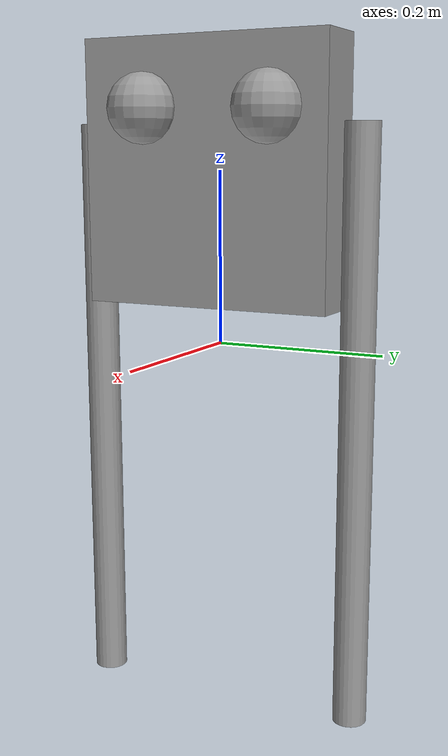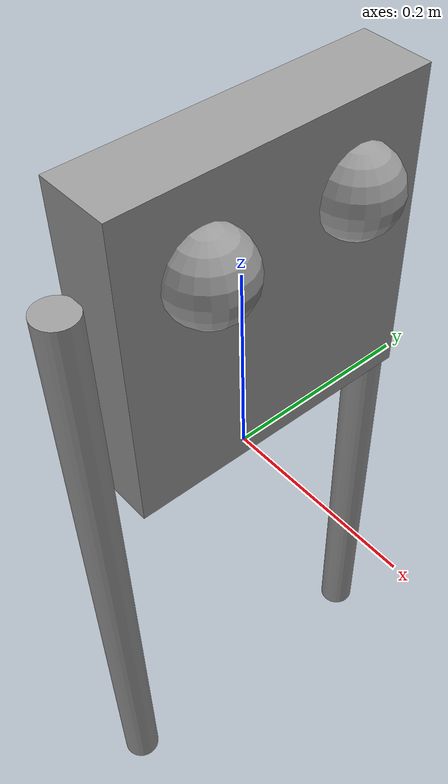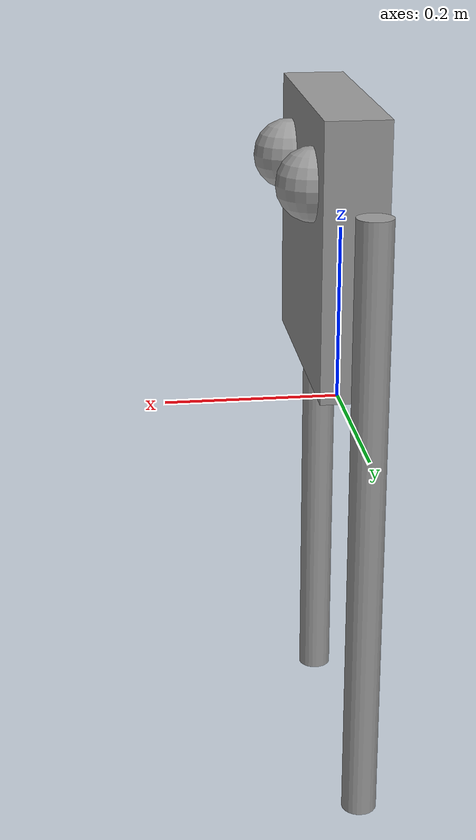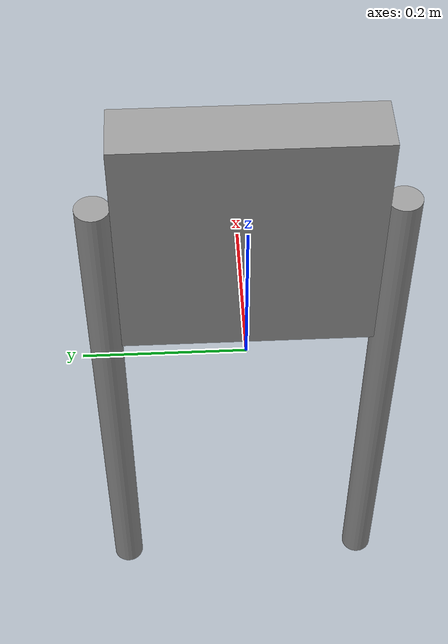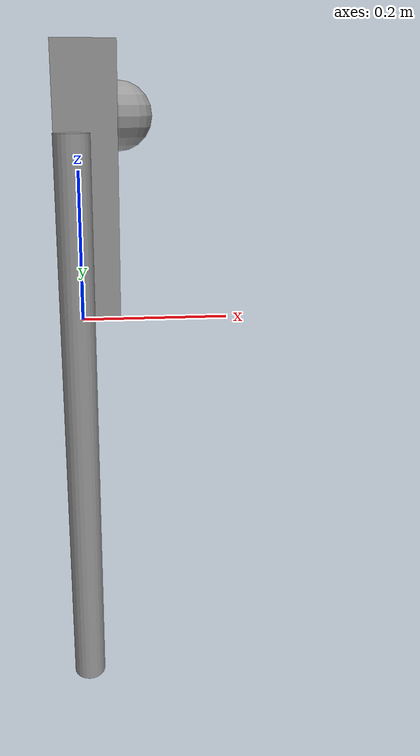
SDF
<?xml version='1.0'?>
<sdf version='1.7'>
  <model name='HumanoidRobot'>
    <link name='link_0'>
      <inertial>
        <mass>1</mass>
        <inertia>
          <ixx>0.145833</ixx>
          <ixy>0</ixy>
          <ixz>0</ixz>
          <iyy>0.145833</iyy>
          <iyz>0</iyz>
          <izz>0.125</izz>
        </inertia>
        <pose>0 0 0 0 -0 0</pose>
      </inertial>
      <pose>-0.005 -0.16914 -0.096951 0 -0 0</pose>
      <gravity>1</gravity>
      <self_collide>0</self_collide>
      <kinematic>0</kinematic>
      <enable_wind>0</enable_wind>
      <visual name='visual'>
        <pose>0 0 0 0 -0 0</pose>
        <geometry>
          <cylinder>
            <radius>0.02</radius>
            <length>0.7</length>
          </cylinder>
        </geometry>
        <material>
          <lighting>1</lighting>
          <script>
            <uri>file://media/materials/scripts/gazebo.material</uri>
            <name>Gazebo/Grey</name>
          </script>
          <shader type='pixel'>
            <normal_map>__default__</normal_map>
          </shader>
          <ambient>0.3 0.3 0.3 1</ambient>
          <diffuse>0.7 0.7 0.7 1</diffuse>
          <specular>0.01 0.01 0.01 1</specular>
          <emissive>0 0 0 1</emissive>
        </material>
        <transparency>0</transparency>
        <cast_shadows>1</cast_shadows>
      </visual>
      <collision name='collision'>
        <laser_retro>0</laser_retro>
        <max_contacts>10</max_contacts>
        <pose>0 0 0 0 -0 0</pose>
        <geometry>
          <cylinder>
            <radius>0.02</radius>
            <length>0.7</length>
          </cylinder>
        </geometry>
        <surface>
          <friction>
            <ode>
              <mu>1</mu>
              <mu2>1</mu2>
              <fdir1>0 0 0</fdir1>
              <slip1>0</slip1>
              <slip2>0</slip2>
            </ode>
            <torsional>
              <coefficient>1</coefficient>
              <patch_radius>0</patch_radius>
              <surface_radius>0</surface_radius>
              <use_patch_radius>1</use_patch_radius>
              <ode>
                <slip>0</slip>
              </ode>
            </torsional>
          </friction>
          <bounce>
            <restitution_coefficient>0</restitution_coefficient>
            <threshold>1e+06</threshold>
          </bounce>
          <contact>
            <collide_without_contact>0</collide_without_contact>
            <collide_without_contact_bitmask>1</collide_without_contact_bitmask>
            <collide_bitmask>1</collide_bitmask>
            <ode>
              <soft_cfm>0</soft_cfm>
              <soft_erp>0.2</soft_erp>
              <kp>1e+13</kp>
              <kd>1</kd>
              <max_vel>0.01</max_vel>
              <min_depth>0</min_depth>
            </ode>
            <bullet>
              <split_impulse>1</split_impulse>
              <split_impulse_penetration_threshold>-0.01</split_impulse_penetration_threshold>
              <soft_cfm>0</soft_cfm>
              <soft_erp>0.2</soft_erp>
              <kp>1e+13</kp>
              <kd>1</kd>
            </bullet>
          </contact>
        </surface>
      </collision>
    </link>
    <link name='link_0_clone'>
      <inertial>
        <mass>1</mass>
        <inertia>
          <ixx>0.145833</ixx>
          <ixy>0</ixy>
          <ixz>0</ixz>
          <iyy>0.145833</iyy>
          <iyz>0</iyz>
          <izz>0.125</izz>
        </inertia>
        <pose>0 0 0 0 -0 0</pose>
      </inertial>
      <pose>-0.005 0.16957 -0.096951 0 -0 0</pose>
      <gravity>1</gravity>
      <self_collide>0</self_collide>
      <kinematic>0</kinematic>
      <enable_wind>0</enable_wind>
      <visual name='visual'>
        <pose>0 0 0 0 -0 0</pose>
        <geometry>
          <cylinder>
            <radius>0.02</radius>
            <length>0.7</length>
          </cylinder>
        </geometry>
        <material>
          <lighting>1</lighting>
          <script>
            <uri>file://media/materials/scripts/gazebo.material</uri>
            <name>Gazebo/Grey</name>
          </script>
          <shader type='pixel'>
            <normal_map>__default__</normal_map>
          </shader>
          <ambient>0.3 0.3 0.3 1</ambient>
          <diffuse>0.7 0.7 0.7 1</diffuse>
          <specular>0.01 0.01 0.01 1</specular>
          <emissive>0 0 0 1</emissive>
        </material>
        <transparency>0</transparency>
        <cast_shadows>1</cast_shadows>
      </visual>
      <collision name='collision'>
        <laser_retro>0</laser_retro>
        <max_contacts>10</max_contacts>
        <pose>0 0 0 0 -0 0</pose>
        <geometry>
          <cylinder>
            <radius>0.02</radius>
            <length>0.7</length>
          </cylinder>
        </geometry>
        <surface>
          <friction>
            <ode>
              <mu>1</mu>
              <mu2>1</mu2>
              <fdir1>0 0 0</fdir1>
              <slip1>0</slip1>
              <slip2>0</slip2>
            </ode>
            <torsional>
              <coefficient>1</coefficient>
              <patch_radius>0</patch_radius>
              <surface_radius>0</surface_radius>
              <use_patch_radius>1</use_patch_radius>
              <ode>
                <slip>0</slip>
              </ode>
            </torsional>
          </friction>
          <bounce>
            <restitution_coefficient>0</restitution_coefficient>
            <threshold>1e+06</threshold>
          </bounce>
          <contact>
            <collide_without_contact>0</collide_without_contact>
            <collide_without_contact_bitmask>1</collide_without_contact_bitmask>
            <collide_bitmask>1</collide_bitmask>
            <ode>
              <soft_cfm>0</soft_cfm>
              <soft_erp>0.2</soft_erp>
              <kp>1e+13</kp>
              <kd>1</kd>
              <max_vel>0.01</max_vel>
              <min_depth>0</min_depth>
            </ode>
            <bullet>
              <split_impulse>1</split_impulse>
              <split_impulse_penetration_threshold>-0.01</split_impulse_penetration_threshold>
              <soft_cfm>0</soft_cfm>
              <soft_erp>0.2</soft_erp>
              <kp>1e+13</kp>
              <kd>1</kd>
            </bullet>
          </contact>
        </surface>
      </collision>
    </link>
    <link name='link_1'>
      <inertial>
        <mass>1</mass>
        <inertia>
          <ixx>0.166667</ixx>
          <ixy>0</ixy>
          <ixz>0</ixz>
          <iyy>0.166667</iyy>
          <iyz>0</iyz>
          <izz>0.166667</izz>
        </inertia>
        <pose>0 0 0 0 -0 0</pose>
      </inertial>
      <pose>0.01 -0.00043 0.196694 0 -0 0</pose>
      <gravity>1</gravity>
      <self_collide>0</self_collide>
      <kinematic>0</kinematic>
      <enable_wind>0</enable_wind>
      <visual name='visual'>
        <pose>0 0 0 0 -0 0</pose>
        <geometry>
          <box>
            <size>0.07 0.3 0.3</size>
          </box>
        </geometry>
        <material>
          <lighting>1</lighting>
          <script>
            <uri>file://media/materials/scripts/gazebo.material</uri>
            <name>Gazebo/Grey</name>
          </script>
          <shader type='pixel'>
            <normal_map>__default__</normal_map>
          </shader>
          <ambient>0.3 0.3 0.3 1</ambient>
          <diffuse>0.7 0.7 0.7 1</diffuse>
          <specular>0.01 0.01 0.01 1</specular>
          <emissive>0 0 0 1</emissive>
        </material>
        <transparency>0</transparency>
        <cast_shadows>1</cast_shadows>
      </visual>
      <collision name='collision'>
        <laser_retro>0</laser_retro>
        <max_contacts>10</max_contacts>
        <pose>0 0 0 0 -0 0</pose>
        <geometry>
          <box>
            <size>0.07 0.3 0.3</size>
          </box>
        </geometry>
        <surface>
          <friction>
            <ode>
              <mu>1</mu>
              <mu2>1</mu2>
              <fdir1>0 0 0</fdir1>
              <slip1>0</slip1>
              <slip2>0</slip2>
            </ode>
            <torsional>
              <coefficient>1</coefficient>
              <patch_radius>0</patch_radius>
              <surface_radius>0</surface_radius>
              <use_patch_radius>1</use_patch_radius>
              <ode>
                <slip>0</slip>
              </ode>
            </torsional>
          </friction>
          <bounce>
            <restitution_coefficient>0</restitution_coefficient>
            <threshold>1e+06</threshold>
          </bounce>
          <contact>
            <collide_without_contact>0</collide_without_contact>
            <collide_without_contact_bitmask>1</collide_without_contact_bitmask>
            <collide_bitmask>1</collide_bitmask>
            <ode>
              <soft_cfm>0</soft_cfm>
              <soft_erp>0.2</soft_erp>
              <kp>1e+13</kp>
              <kd>1</kd>
              <max_vel>0.01</max_vel>
              <min_depth>0</min_depth>
            </ode>
            <bullet>
              <split_impulse>1</split_impulse>
              <split_impulse_penetration_threshold>-0.01</split_impulse_penetration_threshold>
              <soft_cfm>0</soft_cfm>
              <soft_erp>0.2</soft_erp>
              <kp>1e+13</kp>
              <kd>1</kd>
            </bullet>
          </contact>
        </surface>
      </collision>
    </link>
    <link name='link_3'>
      <inertial>
        <mass>0.000505039</mass>
        <inertia>
          <ixx>3.20326e-07</ixx>
          <ixy>0</ixy>
          <ixz>0</ixz>
          <iyy>3.20326e-07</iyy>
          <iyz>0</iyz>
          <izz>3.20326e-07</izz>
        </inertia>
        <pose>0 0 0 0 -0 0</pose>
      </inertial>
      <pose>0.045067 0.079776 0.268028 0 -0 0</pose>
      <visual name='visual'>
        <pose>0 0 0 0 -0 0</pose>
        <geometry>
          <sphere>
            <radius>0.0398202</radius>
          </sphere>
        </geometry>
        <material>
          <lighting>1</lighting>
          <script>
            <uri>file://media/materials/scripts/gazebo.material</uri>
            <name>Gazebo/Grey</name>
          </script>
          <shader type='pixel'/>
          <emissive>0 0 0 1</emissive>
        </material>
        <transparency>0</transparency>
        <cast_shadows>1</cast_shadows>
      </visual>
      <collision name='collision'>
        <laser_retro>0</laser_retro>
        <max_contacts>10</max_contacts>
        <pose>0 0 0 0 -0 0</pose>
        <geometry>
          <sphere>
            <radius>0.03982</radius>
          </sphere>
        </geometry>
        <surface>
          <friction>
            <ode>
              <mu>1</mu>
              <mu2>1</mu2>
              <fdir1>0 0 0</fdir1>
              <slip1>0</slip1>
              <slip2>0</slip2>
            </ode>
            <torsional>
              <coefficient>1</coefficient>
              <patch_radius>0</patch_radius>
              <surface_radius>0</surface_radius>
              <use_patch_radius>1</use_patch_radius>
              <ode>
                <slip>0</slip>
              </ode>
            </torsional>
          </friction>
          <bounce>
            <restitution_coefficient>0</restitution_coefficient>
            <threshold>1e+06</threshold>
          </bounce>
          <contact>
            <collide_without_contact>0</collide_without_contact>
            <collide_without_contact_bitmask>1</collide_without_contact_bitmask>
            <collide_bitmask>1</collide_bitmask>
            <ode>
              <soft_cfm>0</soft_cfm>
              <soft_erp>0.2</soft_erp>
              <kp>1e+13</kp>
              <kd>1</kd>
              <max_vel>0.01</max_vel>
              <min_depth>0</min_depth>
            </ode>
            <bullet>
              <split_impulse>1</split_impulse>
              <split_impulse_penetration_threshold>-0.01</split_impulse_penetration_threshold>
              <soft_cfm>0</soft_cfm>
              <soft_erp>0.2</soft_erp>
              <kp>1e+13</kp>
              <kd>1</kd>
            </bullet>
          </contact>
        </surface>
      </collision>
    </link>
    <link name='link_3_clone'>
      <inertial>
        <mass>0.000505039</mass>
        <inertia>
          <ixx>3.20326e-07</ixx>
          <ixy>0</ixy>
          <ixz>0</ixz>
          <iyy>3.20326e-07</iyy>
          <iyz>0</iyz>
          <izz>3.20326e-07</izz>
        </inertia>
        <pose>0 0 0 0 -0 0</pose>
      </inertial>
      <pose>0.049349 -0.072893 0.26849 0 -0 0</pose>
      <visual name='visual'>
        <pose>0 0 0 0 -0 0</pose>
        <geometry>
          <sphere>
            <radius>0.0398202</radius>
          </sphere>
        </geometry>
        <material>
          <lighting>1</lighting>
          <script>
            <uri>file://media/materials/scripts/gazebo.material</uri>
            <name>Gazebo/Grey</name>
          </script>
          <shader type='pixel'/>
          <emissive>0 0 0 1</emissive>
        </material>
        <transparency>0</transparency>
        <cast_shadows>1</cast_shadows>
      </visual>
      <collision name='collision'>
        <laser_retro>0</laser_retro>
        <max_contacts>10</max_contacts>
        <pose>0 0 0 0 -0 0</pose>
        <geometry>
          <sphere>
            <radius>0.03982</radius>
          </sphere>
        </geometry>
        <surface>
          <friction>
            <ode>
              <mu>1</mu>
              <mu2>1</mu2>
              <fdir1>0 0 0</fdir1>
              <slip1>0</slip1>
              <slip2>0</slip2>
            </ode>
            <torsional>
              <coefficient>1</coefficient>
              <patch_radius>0</patch_radius>
              <surface_radius>0</surface_radius>
              <use_patch_radius>1</use_patch_radius>
              <ode>
                <slip>0</slip>
              </ode>
            </torsional>
          </friction>
          <bounce>
            <restitution_coefficient>0</restitution_coefficient>
            <threshold>1e+06</threshold>
          </bounce>
          <contact>
            <collide_without_contact>0</collide_without_contact>
            <collide_without_contact_bitmask>1</collide_without_contact_bitmask>
            <collide_bitmask>1</collide_bitmask>
            <ode>
              <soft_cfm>0</soft_cfm>
              <soft_erp>0.2</soft_erp>
              <kp>1e+13</kp>
              <kd>1</kd>
              <max_vel>0.01</max_vel>
              <min_depth>0</min_depth>
            </ode>
            <bullet>
              <split_impulse>1</split_impulse>
              <split_impulse_penetration_threshold>-0.01</split_impulse_penetration_threshold>
              <soft_cfm>0</soft_cfm>
              <soft_erp>0.2</soft_erp>
              <kp>1e+13</kp>
              <kd>1</kd>
            </bullet>
          </contact>
        </surface>
      </collision>
    </link>
    <joint name='link_1_JOINT_0' type='revolute'>
      <parent>link_1</parent>
      <child>link_0_clone</child>
      <pose>0 0 0 0 -0 0</pose>
      <axis>
        <xyz>0 1 0</xyz>
        <limit>
          <lower>-1.79769e+308</lower>
          <upper>1.79769e+308</upper>
          <effort>-1</effort>
          <velocity>-1</velocity>
        </limit>
        <dynamics>
          <spring_reference>0</spring_reference>
          <spring_stiffness>0</spring_stiffness>
          <damping>0</damping>
        </dynamics>
      </axis>
      <physics>
        <ode>
          <limit>
            <cfm>0</cfm>
            <erp>0.2</erp>
          </limit>
          <suspension>
            <cfm>0</cfm>
            <erp>0.2</erp>
          </suspension>
        </ode>
      </physics>
    </joint>
    <joint name='link_1_JOINT_2' type='revolute'>
      <parent>link_1</parent>
      <child>link_0</child>
      <pose>0 0 0 0 -0 0</pose>
      <axis>
        <xyz>-0 -1 -0</xyz>
        <limit>
          <lower>-1.79769e+308</lower>
          <upper>1.79769e+308</upper>
          <effort>-1</effort>
          <velocity>-1</velocity>
        </limit>
        <dynamics>
          <spring_reference>0</spring_reference>
          <spring_stiffness>0</spring_stiffness>
          <damping>0</damping>
        </dynamics>
      </axis>
      <physics>
        <ode>
          <limit>
            <cfm>0</cfm>
            <erp>0.2</erp>
          </limit>
          <suspension>
            <cfm>0</cfm>
            <erp>0.2</erp>
          </suspension>
        </ode>
      </physics>
    </joint>
    <joint name='link_1_JOINT_3' type='fixed'>
      <parent>link_1</parent>
      <child>link_3</child>
      <pose>0 0 0 0 -0 0</pose>
      <physics>
        <ode>
          <limit>
            <cfm>0</cfm>
            <erp>0.2</erp>
          </limit>
          <suspension>
            <cfm>0</cfm>
            <erp>0.2</erp>
          </suspension>
        </ode>
      </physics>
    </joint>
    <joint name='link_1_JOINT_4' type='fixed'>
      <parent>link_1</parent>
      <child>link_3_clone</child>
      <pose>0 0 0 0 -0 0</pose>
      <physics>
        <ode>
          <limit>
            <cfm>0</cfm>
            <erp>0.2</erp>
          </limit>
          <suspension>
            <cfm>0</cfm>
            <erp>0.2</erp>
          </suspension>
        </ode>
      </physics>
    </joint>
    <static>0</static>
    <allow_auto_disable>1</allow_auto_disable>
  </model>
</sdf>
